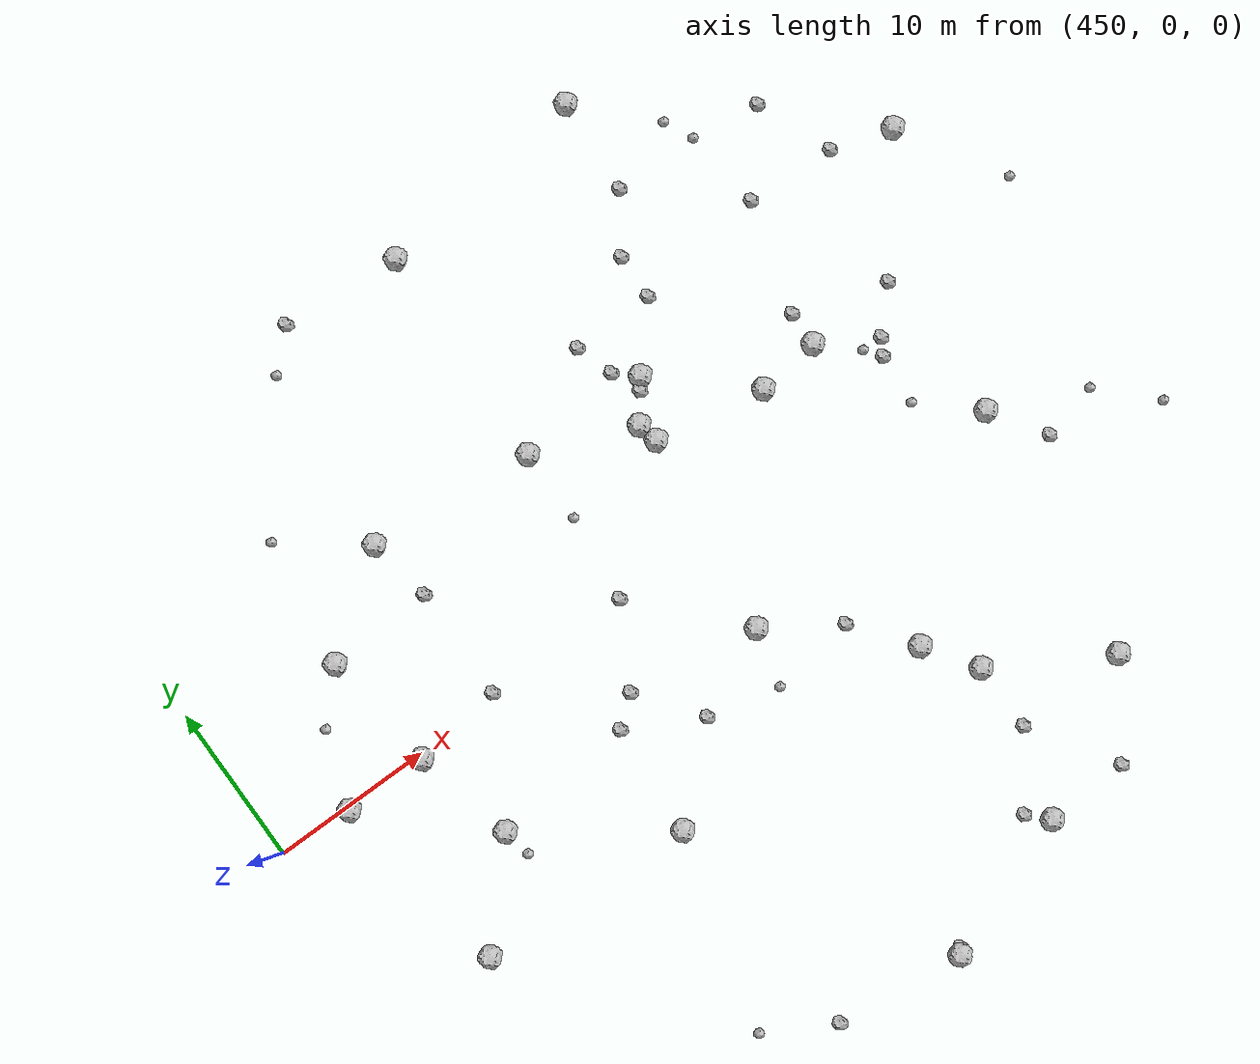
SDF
<sdf version="1.6">
 <world name="default">
  <include><uri>model://sun</uri></include>
  <model name="rock1_12_4">
   <include><uri>model://rock1</uri><pose>458.9919451649602 7.20269676651057 0.5 0 0 0</pose></include>
  </model>
  <model name="rock1_12_5">
   <include><uri>model://rock1</uri><pose>480.2756797156857 -5.764350865795063 0.5 0 0 0</pose></include>
  </model>
  <model name="rock1_12_6">
   <include><uri>model://rock1</uri><pose>461.3486094327059 -6.679425038808205 0.5 0 0 0</pose></include>
  </model>
  <model name="rock1_12_7">
   <include><uri>model://rock1</uri><pose>489.5698049972883 -15.47028209963795 0.5 0 0 0</pose></include>
  </model>
  <model name="rock1_12_8">
   <include><uri>model://rock1</uri><pose>482.1237235685537 6.765707781658627 0.5 0 0 0</pose></include>
  </model>
  <model name="rock1_12_9">
   <include><uri>model://rock1</uri><pose>487.5903703227814 -25.015191587882594 0.5 0 0 0</pose></include>
  </model>
  <model name="rock1_12_10">
   <include><uri>model://rock1</uri><pose>454.699628647505 -0.26220327366668883 0.5 0 0 0</pose></include>
  </model>
  <model name="rock1_12_11">
   <include><uri>model://rock1</uri><pose>464.9550908634506 11.592154845581824 0.5 0 0 0</pose></include>
  </model>
  <model name="rock1_12_12">
   <include><uri>model://rock1</uri><pose>481.83866074147124 8.106697679920423 0.5 0 0 0</pose></include>
  </model>
  <model name="rock1_12_13">
   <include><uri>model://rock1</uri><pose>489.11670143682346 5.482263279543851 0.5 0 0 0</pose></include>
  </model>
  <model name="rock1_12_14">
   <include><uri>model://rock1</uri><pose>456.39704335334 -12.01774537319919 0.5 0 0 0</pose></include>
  </model>
  <model name="rock1_12_15">
   <include><uri>model://rock1</uri><pose>469.76672444480573 -12.753042600164338 0.5 0 0 0</pose></include>
  </model>
  <model name="rock1_12_16">
   <include><uri>model://rock1</uri><pose>459.882541522341 -0.3450284932373364 0.5 0 0 0</pose></include>
  </model>
  <model name="rock1_12_17">
   <include><uri>model://rock1</uri><pose>499.03794084504824 -3.3983959295938106 0.5 0 0 0</pose></include>
  </model>
  <model name="rock1_12_18">
   <include><uri>model://rock1</uri><pose>504.88799226742924 13.680585253241645 0.5 0 0 0</pose></include>
  </model>
  <model name="rock1_12_19">
   <include><uri>model://rock1</uri><pose>483.6443015583725 10.461379989529163 0.5 0 0 0</pose></include>
  </model>
  <model name="rock1_12_20">
   <include><uri>model://rock1</uri><pose>475.4597879208387 10.595061766721095 0.5 0 0 0</pose></include>
  </model>
  <model name="rock1_12_21">
   <include><uri>model://rock1</uri><pose>493.1147226617457 5.929255497203378 0.5 0 0 0</pose></include>
  </model>
  <model name="rock1_12_22">
   <include><uri>model://rock1</uri><pose>496.61321817306117 -19.579803888373945 0.5 0 0 0</pose></include>
  </model>
  <model name="rock1_12_23">
   <include><uri>model://rock1</uri><pose>475.9973009874452 24.882793123874656 0.5 0 0 0</pose></include>
  </model>
  <model name="rock1_12_24">
   <include><uri>model://rock1</uri><pose>487.4483077132617 -12.313415919053426 0.5 0 0 0</pose></include>
  </model>
  <model name="rock1_12_25">
   <include><uri>model://rock1</uri><pose>489.82126931841054 26.55295081268889 0.5 0 0 0</pose></include>
  </model>
  <model name="rock1_12_26">
   <include><uri>model://rock1</uri><pose>478.52979684241404 -28.081070307649792 0.5 0 0 0</pose></include>
  </model>
  <model name="rock2_12_0">
   <include><uri>model://rock2</uri><pose>465.5646889794024 7.508346502875469 0.3 0 0 0</pose></include>
  </model>
  <model name="rock2_12_1">
   <include><uri>model://rock2</uri><pose>501.0522899884485 14.915267971337485 0.3 0 0 0</pose></include>
  </model>
  <model name="rock2_12_2">
   <include><uri>model://rock2</uri><pose>481.59474506101867 14.104530129186479 0.3 0 0 0</pose></include>
  </model>
  <model name="rock2_12_3">
   <include><uri>model://rock2</uri><pose>495.33570351763285 15.213290251744198 0.3 0 0 0</pose></include>
  </model>
  <model name="rock2_12_4">
   <include><uri>model://rock2</uri><pose>468.3256639313944 25.584322280899208 0.3 0 0 0</pose></include>
  </model>
  <model name="rock2_12_5">
   <include><uri>model://rock2</uri><pose>496.6593323209728 3.8703402270311074 0.3 0 0 0</pose></include>
  </model>
  <model name="rock2_12_6">
   <include><uri>model://rock2</uri><pose>470.52837564595967 -27.0972668056755 0.3 0 0 0</pose></include>
  </model>
  <model name="rock2_12_7">
   <include><uri>model://rock2</uri><pose>499.16139402395845 19.75548206947105 0.3 0 0 0</pose></include>
  </model>
  <model name="rock2_12_8">
   <include><uri>model://rock2</uri><pose>483.09316714713157 9.812490832806027 0.3 0 0 0</pose></include>
  </model>
  <model name="rock2_12_9">
   <include><uri>model://rock2</uri><pose>470.2467729370498 -5.820221203541543 0.3 0 0 0</pose></include>
  </model>
  <model name="rock2_12_10">
   <include><uri>model://rock2</uri><pose>496.06452544139484 2.8855812300035026 0.3 0 0 0</pose></include>
  </model>
  <model name="rock2_12_11">
   <include><uri>model://rock2</uri><pose>492.82214182801664 -24.89249777677258 0.3 0 0 0</pose></include>
  </model>
  <model name="rock2_12_12">
   <include><uri>model://rock2</uri><pose>472.0119258683908 -4.406086550987453 0.3 0 0 0</pose></include>
  </model>
  <model name="rock2_12_13">
   <include><uri>model://rock2</uri><pose>474.8194550140968 -8.2303702350614 0.3 0 0 0</pose></include>
  </model>
  <model name="rock2_12_14">
   <include><uri>model://rock2</uri><pose>482.3383811029704 11.680319496228392 0.3 0 0 0</pose></include>
  </model>
  <model name="rock2_12_15">
   <include><uri>model://rock2</uri><pose>486.974054671965 17.028043788410322 0.3 0 0 0</pose></include>
  </model>
  <model name="rock2_12_16">
   <include><uri>model://rock2</uri><pose>489.34515572926654 20.488658490466428 0.3 0 0 0</pose></include>
  </model>
  <model name="rock2_12_17">
   <include><uri>model://rock2</uri><pose>478.795781335465 -27.773006989739677 0.3 0 0 0</pose></include>
  </model>
  <model name="rock2_12_18">
   <include><uri>model://rock2</uri><pose>465.43715894199113 0.39054114643619897 0.3 0 0 0</pose></include>
  </model>
  <model name="rock2_12_19">
   <include><uri>model://rock2</uri><pose>486.84534134731814 14.14748580718269 0.3 0 0 0</pose></include>
  </model>
  <model name="rock2_12_20">
   <include><uri>model://rock2</uri><pose>493.2032435413819 8.178458369085547 0.3 0 0 0</pose></include>
  </model>
  <model name="rock2_12_21">
   <include><uri>model://rock2</uri><pose>474.7629039186601 0.4561597640012387 0.3 0 0 0</pose></include>
  </model>
  <model name="rock2_12_22">
   <include><uri>model://rock2</uri><pose>499.0197002722887 6.343969098496736 0.3 0 0 0</pose></include>
  </model>
  <model name="rock2_12_23">
   <include><uri>model://rock2</uri><pose>501.24290296829184 -6.790131749316849 0.3 0 0 0</pose></include>
  </model>
  <model name="rock2_12_24">
   <include><uri>model://rock2</uri><pose>489.5347098606293 -19.673843033995585 0.3 0 0 0</pose></include>
  </model>
  <model name="rock2_12_25">
   <include><uri>model://rock2</uri><pose>484.68353208169435 -8.656519253246941 0.3 0 0 0</pose></include>
  </model>
  <model name="rock2_12_26">
   <include><uri>model://rock2</uri><pose>486.4369140112343 -23.83931008934897 0.3 0 0 0</pose></include>
  </model>
  <model name="rock3_12_0">
   <include><uri>model://rock3</uri><pose>475.38313445601716 5.93420800870463 0.2 0 0 0</pose></include>
  </model>
  <model name="rock3_12_1">
   <include><uri>model://rock3</uri><pose>508.8152143157994 7.17687529962388 0.2 0 0 0</pose></include>
  </model>
  <model name="rock3_12_2">
   <include><uri>model://rock3</uri><pose>504.9007689843756 -5.977512645484278 0.2 0 0 0</pose></include>
  </model>
  <model name="rock3_12_3">
   <include><uri>model://rock3</uri><pose>466.3587465478326 -24.84173833804198 0.2 0 0 0</pose></include>
  </model>
  <model name="rock3_12_4">
   <include><uri>model://rock3</uri><pose>479.3198809276183 -9.377673056261564 0.2 0 0 0</pose></include>
  </model>
  <model name="rock3_12_5">
   <include><uri>model://rock3</uri><pose>461.5845175267486 -8.506927734408073 0.2 0 0 0</pose></include>
  </model>
  <model name="rock3_12_6">
   <include><uri>model://rock3</uri><pose>456.22655997529375 4.431009841263915 0.2 0 0 0</pose></include>
  </model>
  <model name="rock3_12_7">
   <include><uri>model://rock3</uri><pose>466.0665566420188 23.378868920335243 0.2 0 0 0</pose></include>
  </model>
  <model name="rock3_12_8">
   <include><uri>model://rock3</uri><pose>507.9894754740054 -9.182688972629755 0.2 0 0 0</pose></include>
  </model>
  <model name="rock3_12_9">
   <include><uri>model://rock3</uri><pose>460.03609248785307 15.374608248280879 0.2 0 0 0</pose></include>
  </model>
  <model name="rock3_12_10">
   <include><uri>model://rock3</uri><pose>493.9480224534464 22.22339635645988 0.2 0 0 0</pose></include>
  </model>
  <model name="rock3_12_11">
   <include><uri>model://rock3</uri><pose>494.78964389882304 20.369296754922694 0.2 0 0 0</pose></include>
  </model>
  <model name="rock3_12_12">
   <include><uri>model://rock3</uri><pose>495.7540713637856 -0.3815799361713488 0.2 0 0 0</pose></include>
  </model>
  <model name="rock3_12_13">
   <include><uri>model://rock3</uri><pose>495.325210042882 3.8720664862726437 0.2 0 0 0</pose></include>
  </model>
 </world>
</sdf>
